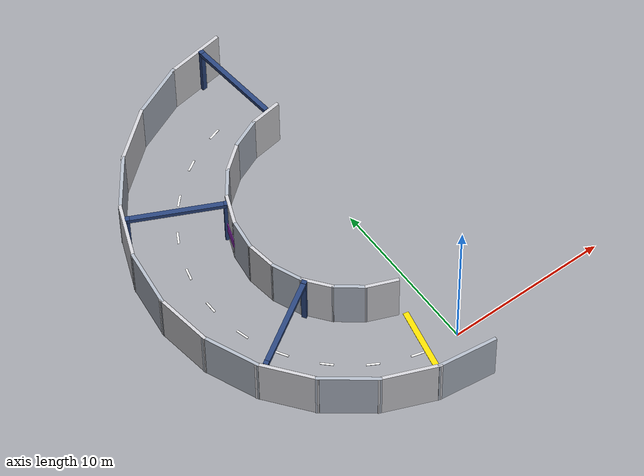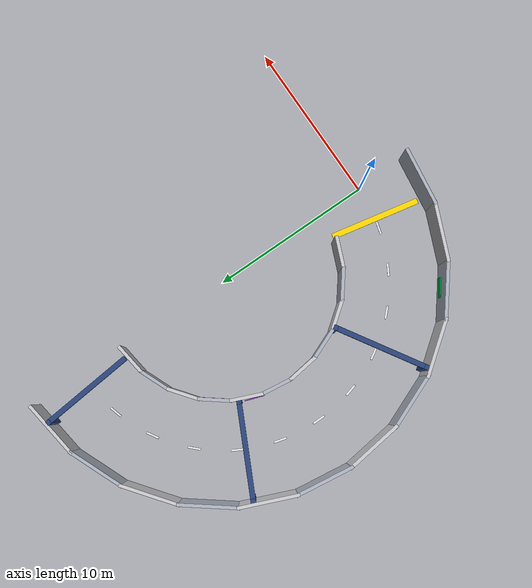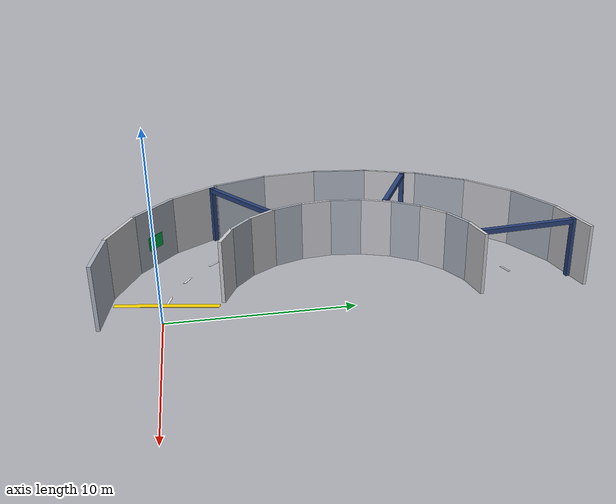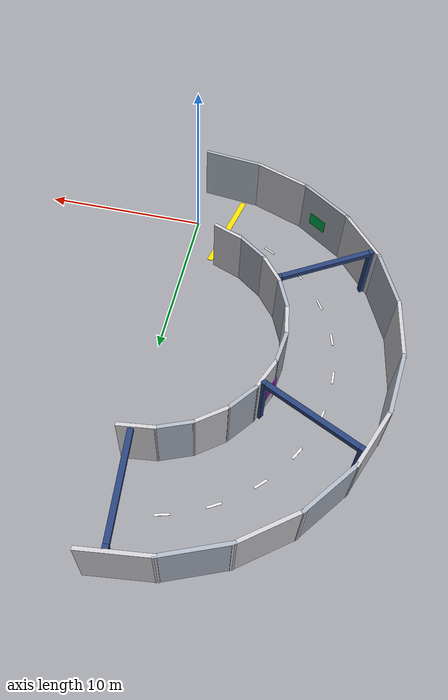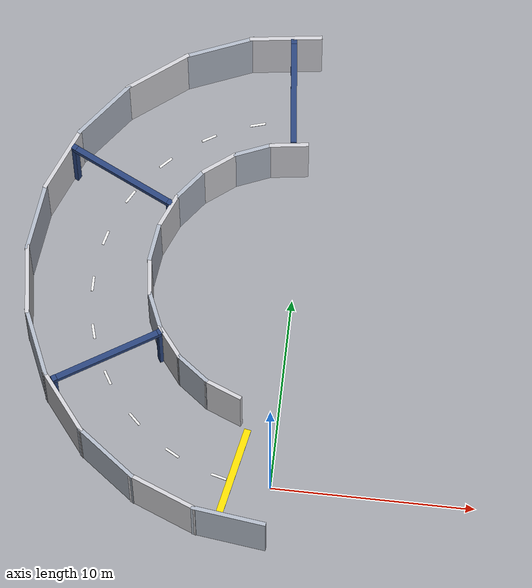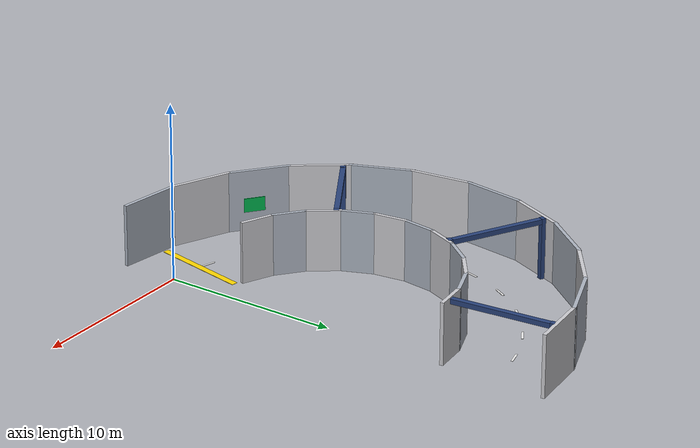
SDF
<sdf version="1.10">
 <world name="tunnel_circuit">
  <model name="tw_Lo_0">
   <static>true</static>
   <pose>-1.697 22.889 1.750 0 0 3.2725</pose>
   <link name="link">
    <collision name="col"><geometry><box><size>3.665 0.200 3.500</size></box></geometry></collision>
    <visual name="vis">
     <geometry><box><size>3.665 0.200 3.500</size></box></geometry>
     <material>
      <ambient>0.50 0.50 0.52 1</ambient>
      <diffuse>0.80 0.80 0.82 1</diffuse>
      <specular>0.1 0.1 0.1 1</specular>
      <pbr>
       <metal><albedo_map>detail.png</albedo_map><roughness>0.92</roughness><metalness>0.0</metalness></metal>
      </pbr>
     </material>
    </visual>
   </link>
  </model>
  <model name="tw_Lo_1">
   <static>true</static>
   <pose>-4.975 22.010 1.750 0 0 3.5343</pose>
   <link name="link">
    <collision name="col"><geometry><box><size>3.665 0.200 3.500</size></box></geometry></collision>
    <visual name="vis">
     <geometry><box><size>3.665 0.200 3.500</size></box></geometry>
     <material>
      <ambient>0.42 0.44 0.48 1</ambient>
      <diffuse>0.68 0.71 0.76 1</diffuse>
      <specular>0.1 0.1 0.1 1</specular>
      <pbr>
       <metal><albedo_map>detail.png</albedo_map><roughness>0.9</roughness><metalness>0.0</metalness></metal>
      </pbr>
     </material>
    </visual>
   </link>
  </model>
  <model name="tw_Lo_2">
   <static>true</static>
   <pose>-7.914 20.314 1.750 0 0 3.7961</pose>
   <link name="link">
    <collision name="col"><geometry><box><size>3.665 0.200 3.500</size></box></geometry></collision>
    <visual name="vis">
     <geometry><box><size>3.665 0.200 3.500</size></box></geometry>
     <material>
      <ambient>0.50 0.50 0.52 1</ambient>
      <diffuse>0.80 0.80 0.82 1</diffuse>
      <specular>0.1 0.1 0.1 1</specular>
      <pbr>
       <metal><albedo_map>detail.png</albedo_map><roughness>0.92</roughness><metalness>0.0</metalness></metal>
      </pbr>
     </material>
    </visual>
   </link>
  </model>
  <model name="tw_Lo_3">
   <static>true</static>
   <pose>-10.314 17.914 1.750 0 0 4.0579</pose>
   <link name="link">
    <collision name="col"><geometry><box><size>3.665 0.200 3.500</size></box></geometry></collision>
    <visual name="vis">
     <geometry><box><size>3.665 0.200 3.500</size></box></geometry>
     <material>
      <ambient>0.42 0.44 0.48 1</ambient>
      <diffuse>0.68 0.71 0.76 1</diffuse>
      <specular>0.1 0.1 0.1 1</specular>
      <pbr>
       <metal><albedo_map>detail.png</albedo_map><roughness>0.9</roughness><metalness>0.0</metalness></metal>
      </pbr>
     </material>
    </visual>
   </link>
  </model>
  <model name="tw_Lo_4">
   <static>true</static>
   <pose>-12.010 14.975 1.750 0 0 4.3197</pose>
   <link name="link">
    <collision name="col"><geometry><box><size>3.665 0.200 3.500</size></box></geometry></collision>
    <visual name="vis">
     <geometry><box><size>3.665 0.200 3.500</size></box></geometry>
     <material>
      <ambient>0.50 0.50 0.52 1</ambient>
      <diffuse>0.80 0.80 0.82 1</diffuse>
      <specular>0.1 0.1 0.1 1</specular>
      <pbr>
       <metal><albedo_map>detail.png</albedo_map><roughness>0.92</roughness><metalness>0.0</metalness></metal>
      </pbr>
     </material>
    </visual>
   </link>
  </model>
  <model name="tw_Lo_5">
   <static>true</static>
   <pose>-12.889 11.697 1.750 0 0 4.5815</pose>
   <link name="link">
    <collision name="col"><geometry><box><size>3.665 0.200 3.500</size></box></geometry></collision>
    <visual name="vis">
     <geometry><box><size>3.665 0.200 3.500</size></box></geometry>
     <material>
      <ambient>0.42 0.44 0.48 1</ambient>
      <diffuse>0.68 0.71 0.76 1</diffuse>
      <specular>0.1 0.1 0.1 1</specular>
      <pbr>
       <metal><albedo_map>detail.png</albedo_map><roughness>0.9</roughness><metalness>0.0</metalness></metal>
      </pbr>
     </material>
    </visual>
   </link>
  </model>
  <model name="tw_Lo_6">
   <static>true</static>
   <pose>-12.889 8.303 1.750 0 0 4.8433</pose>
   <link name="link">
    <collision name="col"><geometry><box><size>3.665 0.200 3.500</size></box></geometry></collision>
    <visual name="vis">
     <geometry><box><size>3.665 0.200 3.500</size></box></geometry>
     <material>
      <ambient>0.50 0.50 0.52 1</ambient>
      <diffuse>0.80 0.80 0.82 1</diffuse>
      <specular>0.1 0.1 0.1 1</specular>
      <pbr>
       <metal><albedo_map>detail.png</albedo_map><roughness>0.92</roughness><metalness>0.0</metalness></metal>
      </pbr>
     </material>
    </visual>
   </link>
  </model>
  <model name="tw_Lo_7">
   <static>true</static>
   <pose>-12.010 5.025 1.750 0 0 5.1051</pose>
   <link name="link">
    <collision name="col"><geometry><box><size>3.665 0.200 3.500</size></box></geometry></collision>
    <visual name="vis">
     <geometry><box><size>3.665 0.200 3.500</size></box></geometry>
     <material>
      <ambient>0.42 0.44 0.48 1</ambient>
      <diffuse>0.68 0.71 0.76 1</diffuse>
      <specular>0.1 0.1 0.1 1</specular>
      <pbr>
       <metal><albedo_map>detail.png</albedo_map><roughness>0.9</roughness><metalness>0.0</metalness></metal>
      </pbr>
     </material>
    </visual>
   </link>
  </model>
  <model name="tw_Lo_8">
   <static>true</static>
   <pose>-10.314 2.086 1.750 0 0 5.3669</pose>
   <link name="link">
    <collision name="col"><geometry><box><size>3.665 0.200 3.500</size></box></geometry></collision>
    <visual name="vis">
     <geometry><box><size>3.665 0.200 3.500</size></box></geometry>
     <material>
      <ambient>0.50 0.50 0.52 1</ambient>
      <diffuse>0.80 0.80 0.82 1</diffuse>
      <specular>0.1 0.1 0.1 1</specular>
      <pbr>
       <metal><albedo_map>detail.png</albedo_map><roughness>0.92</roughness><metalness>0.0</metalness></metal>
      </pbr>
     </material>
    </visual>
   </link>
  </model>
  <model name="tw_Lo_9">
   <static>true</static>
   <pose>-7.914 -0.314 1.750 0 0 5.6287</pose>
   <link name="link">
    <collision name="col"><geometry><box><size>3.665 0.200 3.500</size></box></geometry></collision>
    <visual name="vis">
     <geometry><box><size>3.665 0.200 3.500</size></box></geometry>
     <material>
      <ambient>0.42 0.44 0.48 1</ambient>
      <diffuse>0.68 0.71 0.76 1</diffuse>
      <specular>0.1 0.1 0.1 1</specular>
      <pbr>
       <metal><albedo_map>detail.png</albedo_map><roughness>0.9</roughness><metalness>0.0</metalness></metal>
      </pbr>
     </material>
    </visual>
   </link>
  </model>
  <model name="tw_Lo_10">
   <static>true</static>
   <pose>-4.975 -2.010 1.750 0 0 5.8905</pose>
   <link name="link">
    <collision name="col"><geometry><box><size>3.665 0.200 3.500</size></box></geometry></collision>
    <visual name="vis">
     <geometry><box><size>3.665 0.200 3.500</size></box></geometry>
     <material>
      <ambient>0.50 0.50 0.52 1</ambient>
      <diffuse>0.80 0.80 0.82 1</diffuse>
      <specular>0.1 0.1 0.1 1</specular>
      <pbr>
       <metal><albedo_map>detail.png</albedo_map><roughness>0.92</roughness><metalness>0.0</metalness></metal>
      </pbr>
     </material>
    </visual>
   </link>
  </model>
  <model name="tw_Lo_11">
   <static>true</static>
   <pose>-1.697 -2.889 1.750 0 0 6.1523</pose>
   <link name="link">
    <collision name="col"><geometry><box><size>3.665 0.200 3.500</size></box></geometry></collision>
    <visual name="vis">
     <geometry><box><size>3.665 0.200 3.500</size></box></geometry>
     <material>
      <ambient>0.42 0.44 0.48 1</ambient>
      <diffuse>0.68 0.71 0.76 1</diffuse>
      <specular>0.1 0.1 0.1 1</specular>
      <pbr>
       <metal><albedo_map>detail.png</albedo_map><roughness>0.9</roughness><metalness>0.0</metalness></metal>
      </pbr>
     </material>
    </visual>
   </link>
  </model>
  <model name="tw_Li_0">
   <static>true</static>
   <pose>-0.914 16.940 1.750 0 0 3.2725</pose>
   <link name="link">
    <collision name="col"><geometry><box><size>1.974 0.200 3.500</size></box></geometry></collision>
    <visual name="vis">
     <geometry><box><size>1.974 0.200 3.500</size></box></geometry>
     <material>
      <ambient>0.50 0.50 0.52 1</ambient>
      <diffuse>0.80 0.80 0.82 1</diffuse>
      <specular>0.1 0.1 0.1 1</specular>
      <pbr>
       <metal><albedo_map>detail.png</albedo_map><roughness>0.92</roughness><metalness>0.0</metalness></metal>
      </pbr>
     </material>
    </visual>
   </link>
  </model>
  <model name="tw_Li_1">
   <static>true</static>
   <pose>-2.679 16.467 1.750 0 0 3.5343</pose>
   <link name="link">
    <collision name="col"><geometry><box><size>1.974 0.200 3.500</size></box></geometry></collision>
    <visual name="vis">
     <geometry><box><size>1.974 0.200 3.500</size></box></geometry>
     <material>
      <ambient>0.42 0.44 0.48 1</ambient>
      <diffuse>0.68 0.71 0.76 1</diffuse>
      <specular>0.1 0.1 0.1 1</specular>
      <pbr>
       <metal><albedo_map>detail.png</albedo_map><roughness>0.9</roughness><metalness>0.0</metalness></metal>
      </pbr>
     </material>
    </visual>
   </link>
  </model>
  <model name="tw_Li_2">
   <static>true</static>
   <pose>-4.261 15.553 1.750 0 0 3.7961</pose>
   <link name="link">
    <collision name="col"><geometry><box><size>1.974 0.200 3.500</size></box></geometry></collision>
    <visual name="vis">
     <geometry><box><size>1.974 0.200 3.500</size></box></geometry>
     <material>
      <ambient>0.50 0.50 0.52 1</ambient>
      <diffuse>0.80 0.80 0.82 1</diffuse>
      <specular>0.1 0.1 0.1 1</specular>
      <pbr>
       <metal><albedo_map>detail.png</albedo_map><roughness>0.92</roughness><metalness>0.0</metalness></metal>
      </pbr>
     </material>
    </visual>
   </link>
  </model>
  <model name="tw_Li_3">
   <static>true</static>
   <pose>-5.553 14.261 1.750 0 0 4.0579</pose>
   <link name="link">
    <collision name="col"><geometry><box><size>1.974 0.200 3.500</size></box></geometry></collision>
    <visual name="vis">
     <geometry><box><size>1.974 0.200 3.500</size></box></geometry>
     <material>
      <ambient>0.42 0.44 0.48 1</ambient>
      <diffuse>0.68 0.71 0.76 1</diffuse>
      <specular>0.1 0.1 0.1 1</specular>
      <pbr>
       <metal><albedo_map>detail.png</albedo_map><roughness>0.9</roughness><metalness>0.0</metalness></metal>
      </pbr>
     </material>
    </visual>
   </link>
  </model>
  <model name="tw_Li_4">
   <static>true</static>
   <pose>-6.467 12.679 1.750 0 0 4.3197</pose>
   <link name="link">
    <collision name="col"><geometry><box><size>1.974 0.200 3.500</size></box></geometry></collision>
    <visual name="vis">
     <geometry><box><size>1.974 0.200 3.500</size></box></geometry>
     <material>
      <ambient>0.50 0.50 0.52 1</ambient>
      <diffuse>0.80 0.80 0.82 1</diffuse>
      <specular>0.1 0.1 0.1 1</specular>
      <pbr>
       <metal><albedo_map>detail.png</albedo_map><roughness>0.92</roughness><metalness>0.0</metalness></metal>
      </pbr>
     </material>
    </visual>
   </link>
  </model>
  <model name="tw_Li_5">
   <static>true</static>
   <pose>-6.940 10.914 1.750 0 0 4.5815</pose>
   <link name="link">
    <collision name="col"><geometry><box><size>1.974 0.200 3.500</size></box></geometry></collision>
    <visual name="vis">
     <geometry><box><size>1.974 0.200 3.500</size></box></geometry>
     <material>
      <ambient>0.42 0.44 0.48 1</ambient>
      <diffuse>0.68 0.71 0.76 1</diffuse>
      <specular>0.1 0.1 0.1 1</specular>
      <pbr>
       <metal><albedo_map>detail.png</albedo_map><roughness>0.9</roughness><metalness>0.0</metalness></metal>
      </pbr>
     </material>
    </visual>
   </link>
  </model>
  <model name="tw_Li_6">
   <static>true</static>
   <pose>-6.940 9.086 1.750 0 0 4.8433</pose>
   <link name="link">
    <collision name="col"><geometry><box><size>1.974 0.200 3.500</size></box></geometry></collision>
    <visual name="vis">
     <geometry><box><size>1.974 0.200 3.500</size></box></geometry>
     <material>
      <ambient>0.50 0.50 0.52 1</ambient>
      <diffuse>0.80 0.80 0.82 1</diffuse>
      <specular>0.1 0.1 0.1 1</specular>
      <pbr>
       <metal><albedo_map>detail.png</albedo_map><roughness>0.92</roughness><metalness>0.0</metalness></metal>
      </pbr>
     </material>
    </visual>
   </link>
  </model>
  <model name="tw_Li_7">
   <static>true</static>
   <pose>-6.467 7.321 1.750 0 0 5.1051</pose>
   <link name="link">
    <collision name="col"><geometry><box><size>1.974 0.200 3.500</size></box></geometry></collision>
    <visual name="vis">
     <geometry><box><size>1.974 0.200 3.500</size></box></geometry>
     <material>
      <ambient>0.42 0.44 0.48 1</ambient>
      <diffuse>0.68 0.71 0.76 1</diffuse>
      <specular>0.1 0.1 0.1 1</specular>
      <pbr>
       <metal><albedo_map>detail.png</albedo_map><roughness>0.9</roughness><metalness>0.0</metalness></metal>
      </pbr>
     </material>
    </visual>
   </link>
  </model>
  <model name="tw_Li_8">
   <static>true</static>
   <pose>-5.553 5.739 1.750 0 0 5.3669</pose>
   <link name="link">
    <collision name="col"><geometry><box><size>1.974 0.200 3.500</size></box></geometry></collision>
    <visual name="vis">
     <geometry><box><size>1.974 0.200 3.500</size></box></geometry>
     <material>
      <ambient>0.50 0.50 0.52 1</ambient>
      <diffuse>0.80 0.80 0.82 1</diffuse>
      <specular>0.1 0.1 0.1 1</specular>
      <pbr>
       <metal><albedo_map>detail.png</albedo_map><roughness>0.92</roughness><metalness>0.0</metalness></metal>
      </pbr>
     </material>
    </visual>
   </link>
  </model>
  <model name="tw_Li_9">
   <static>true</static>
   <pose>-4.261 4.447 1.750 0 0 5.6287</pose>
   <link name="link">
    <collision name="col"><geometry><box><size>1.974 0.200 3.500</size></box></geometry></collision>
    <visual name="vis">
     <geometry><box><size>1.974 0.200 3.500</size></box></geometry>
     <material>
      <ambient>0.42 0.44 0.48 1</ambient>
      <diffuse>0.68 0.71 0.76 1</diffuse>
      <specular>0.1 0.1 0.1 1</specular>
      <pbr>
       <metal><albedo_map>detail.png</albedo_map><roughness>0.9</roughness><metalness>0.0</metalness></metal>
      </pbr>
     </material>
    </visual>
   </link>
  </model>
  <model name="tw_Li_10">
   <static>true</static>
   <pose>-2.679 3.533 1.750 0 0 5.8905</pose>
   <link name="link">
    <collision name="col"><geometry><box><size>1.974 0.200 3.500</size></box></geometry></collision>
    <visual name="vis">
     <geometry><box><size>1.974 0.200 3.500</size></box></geometry>
     <material>
      <ambient>0.50 0.50 0.52 1</ambient>
      <diffuse>0.80 0.80 0.82 1</diffuse>
      <specular>0.1 0.1 0.1 1</specular>
      <pbr>
       <metal><albedo_map>detail.png</albedo_map><roughness>0.92</roughness><metalness>0.0</metalness></metal>
      </pbr>
     </material>
    </visual>
   </link>
  </model>
  <model name="rib17_m">
   <static>true</static>
   <pose>-1.269 22.757 1.750 0 0 3.2407</pose>
   <link name="link">
    <collision name="col"><geometry><box><size>0.300 0.250 3.500</size></box></geometry></collision>
    <visual name="vis">
     <geometry><box><size>0.300 0.250 3.500</size></box></geometry>
     <material>
      <ambient>0.10 0.16 0.30 1</ambient>
      <diffuse>0.16 0.26 0.48 1</diffuse>
      <specular>0.3 0.3 0.35 1</specular>
     </material>
    </visual>
   </link>
  </model>
  <model name="rib17_c">
   <static>true</static>
   <pose>-0.990 19.951 3.340 0 0 3.2407</pose>
   <link name="link">
    <collision name="col"><geometry><box><size>0.300 5.700 0.280</size></box></geometry></collision>
    <visual name="vis">
     <geometry><box><size>0.300 5.700 0.280</size></box></geometry>
     <material>
      <ambient>0.10 0.16 0.30 1</ambient>
      <diffuse>0.16 0.26 0.48 1</diffuse>
      <specular>0.3 0.3 0.35 1</specular>
     </material>
    </visual>
   </link>
  </model>
  <model name="rib18_p">
   <static>true</static>
   <pose>-6.442 13.172 1.750 0 0 4.2549</pose>
   <link name="link">
    <collision name="col"><geometry><box><size>0.300 0.250 3.500</size></box></geometry></collision>
    <visual name="vis">
     <geometry><box><size>0.300 0.250 3.500</size></box></geometry>
     <material>
      <ambient>0.10 0.16 0.30 1</ambient>
      <diffuse>0.16 0.26 0.48 1</diffuse>
      <specular>0.3 0.3 0.35 1</specular>
     </material>
    </visual>
   </link>
  </model>
  <model name="rib18_m">
   <static>true</static>
   <pose>-11.501 15.663 1.750 0 0 4.2549</pose>
   <link name="link">
    <collision name="col"><geometry><box><size>0.300 0.250 3.500</size></box></geometry></collision>
    <visual name="vis">
     <geometry><box><size>0.300 0.250 3.500</size></box></geometry>
     <material>
      <ambient>0.10 0.16 0.30 1</ambient>
      <diffuse>0.16 0.26 0.48 1</diffuse>
      <specular>0.3 0.3 0.35 1</specular>
     </material>
    </visual>
   </link>
  </model>
  <model name="rib18_c">
   <static>true</static>
   <pose>-8.971 14.417 3.340 0 0 4.2549</pose>
   <link name="link">
    <collision name="col"><geometry><box><size>0.300 5.700 0.280</size></box></geometry></collision>
    <visual name="vis">
     <geometry><box><size>0.300 5.700 0.280</size></box></geometry>
     <material>
      <ambient>0.10 0.16 0.30 1</ambient>
      <diffuse>0.16 0.26 0.48 1</diffuse>
      <specular>0.3 0.3 0.35 1</specular>
     </material>
    </visual>
   </link>
  </model>
  <model name="rib19_p">
   <static>true</static>
   <pose>-6.096 6.207 1.750 0 0 5.2690</pose>
   <link name="link">
    <collision name="col"><geometry><box><size>0.300 0.250 3.500</size></box></geometry></collision>
    <visual name="vis">
     <geometry><box><size>0.300 0.250 3.500</size></box></geometry>
     <material>
      <ambient>0.10 0.16 0.30 1</ambient>
      <diffuse>0.16 0.26 0.48 1</diffuse>
      <specular>0.3 0.3 0.35 1</specular>
     </material>
    </visual>
   </link>
  </model>
  <model name="rib19_m">
   <static>true</static>
   <pose>-10.885 3.227 1.750 0 0 5.2690</pose>
   <link name="link">
    <collision name="col"><geometry><box><size>0.300 0.250 3.500</size></box></geometry></collision>
    <visual name="vis">
     <geometry><box><size>0.300 0.250 3.500</size></box></geometry>
     <material>
      <ambient>0.10 0.16 0.30 1</ambient>
      <diffuse>0.16 0.26 0.48 1</diffuse>
      <specular>0.3 0.3 0.35 1</specular>
     </material>
    </visual>
   </link>
  </model>
  <model name="rib19_c">
   <static>true</static>
   <pose>-8.490 4.717 3.340 0 0 5.2690</pose>
   <link name="link">
    <collision name="col"><geometry><box><size>0.300 5.700 0.280</size></box></geometry></collision>
    <visual name="vis">
     <geometry><box><size>0.300 5.700 0.280</size></box></geometry>
     <material>
      <ambient>0.10 0.16 0.30 1</ambient>
      <diffuse>0.16 0.26 0.48 1</diffuse>
      <specular>0.3 0.3 0.35 1</specular>
     </material>
    </visual>
   </link>
  </model>
  <model name="sign14">
   <static>true</static>
   <pose>-6.772 12.325 1.500 0 0 4.3816</pose>
   <link name="link">
    <visual name="vis">
     <geometry><box><size>1.200 0.050 0.800</size></box></geometry>
     <material>
      <ambient>0.35 0.10 0.45 1</ambient>
      <diffuse>0.55 0.16 0.70 1</diffuse>
      <specular>0.1 0.1 0.1 1</specular>
     </material>
    </visual>
   </link>
  </model>
  <model name="sign15">
   <static>true</static>
   <pose>-7.605 -0.346 1.500 0 0 5.6493</pose>
   <link name="link">
    <visual name="vis">
     <geometry><box><size>1.200 0.050 0.800</size></box></geometry>
     <material>
      <ambient>0.0 0.5 0.2 1</ambient>
      <diffuse>0.0 0.7 0.3 1</diffuse>
      <specular>0.1 0.1 0.1 1</specular>
     </material>
    </visual>
   </link>
  </model>
  <model name="dash67">
   <static>true</static>
   <pose>-2.775 19.607 0.012 0 0 3.4227</pose>
   <link name="link">
    <visual name="vis">
     <geometry><box><size>0.800 0.120 0.020</size></box></geometry>
     <material>
      <ambient>0.7 0.7 0.7 1</ambient>
      <diffuse>0.92 0.92 0.92 1</diffuse>
      <specular>0.1 0.1 0.1 1</specular>
     </material>
    </visual>
   </link>
  </model>
  <model name="dash68">
   <static>true</static>
   <pose>-5.152 18.571 0.012 0 0 3.6828</pose>
   <link name="link">
    <visual name="vis">
     <geometry><box><size>0.800 0.120 0.020</size></box></geometry>
     <material>
      <ambient>0.7 0.7 0.7 1</ambient>
      <diffuse>0.92 0.92 0.92 1</diffuse>
      <specular>0.1 0.1 0.1 1</specular>
     </material>
    </visual>
   </link>
  </model>
  <model name="dash69">
   <static>true</static>
   <pose>-7.182 16.958 0.012 0 0 3.9428</pose>
   <link name="link">
    <visual name="vis">
     <geometry><box><size>0.800 0.120 0.020</size></box></geometry>
     <material>
      <ambient>0.7 0.7 0.7 1</ambient>
      <diffuse>0.92 0.92 0.92 1</diffuse>
      <specular>0.1 0.1 0.1 1</specular>
     </material>
    </visual>
   </link>
  </model>
  <model name="dash70">
   <static>true</static>
   <pose>-8.730 14.878 0.012 0 0 4.2029</pose>
   <link name="link">
    <visual name="vis">
     <geometry><box><size>0.800 0.120 0.020</size></box></geometry>
     <material>
      <ambient>0.7 0.7 0.7 1</ambient>
      <diffuse>0.92 0.92 0.92 1</diffuse>
      <specular>0.1 0.1 0.1 1</specular>
     </material>
    </visual>
   </link>
  </model>
  <model name="dash71">
   <static>true</static>
   <pose>-9.690 12.469 0.012 0 0 4.4629</pose>
   <link name="link">
    <visual name="vis">
     <geometry><box><size>0.800 0.120 0.020</size></box></geometry>
     <material>
      <ambient>0.7 0.7 0.7 1</ambient>
      <diffuse>0.92 0.92 0.92 1</diffuse>
      <specular>0.1 0.1 0.1 1</specular>
     </material>
    </visual>
   </link>
  </model>
  <model name="dash72">
   <static>true</static>
   <pose>-9.999 9.894 0.012 0 0 4.7229</pose>
   <link name="link">
    <visual name="vis">
     <geometry><box><size>0.800 0.120 0.020</size></box></geometry>
     <material>
      <ambient>0.7 0.7 0.7 1</ambient>
      <diffuse>0.92 0.92 0.92 1</diffuse>
      <specular>0.1 0.1 0.1 1</specular>
     </material>
    </visual>
   </link>
  </model>
  <model name="dash73">
   <static>true</static>
   <pose>-9.636 7.327 0.012 0 0 4.9830</pose>
   <link name="link">
    <visual name="vis">
     <geometry><box><size>0.800 0.120 0.020</size></box></geometry>
     <material>
      <ambient>0.7 0.7 0.7 1</ambient>
      <diffuse>0.92 0.92 0.92 1</diffuse>
      <specular>0.1 0.1 0.1 1</specular>
     </material>
    </visual>
   </link>
  </model>
  <model name="dash74">
   <static>true</static>
   <pose>-8.625 4.939 0.012 0 0 5.2430</pose>
   <link name="link">
    <visual name="vis">
     <geometry><box><size>0.800 0.120 0.020</size></box></geometry>
     <material>
      <ambient>0.7 0.7 0.7 1</ambient>
      <diffuse>0.92 0.92 0.92 1</diffuse>
      <specular>0.1 0.1 0.1 1</specular>
     </material>
    </visual>
   </link>
  </model>
  <model name="dash75">
   <static>true</static>
   <pose>-7.034 2.892 0.012 0 0 5.5031</pose>
   <link name="link">
    <visual name="vis">
     <geometry><box><size>0.800 0.120 0.020</size></box></geometry>
     <material>
      <ambient>0.7 0.7 0.7 1</ambient>
      <diffuse>0.92 0.92 0.92 1</diffuse>
      <specular>0.1 0.1 0.1 1</specular>
     </material>
    </visual>
   </link>
  </model>
  <model name="dash76">
   <static>true</static>
   <pose>-4.970 1.322 0.012 0 0 5.7631</pose>
   <link name="link">
    <visual name="vis">
     <geometry><box><size>0.800 0.120 0.020</size></box></geometry>
     <material>
      <ambient>0.7 0.7 0.7 1</ambient>
      <diffuse>0.92 0.92 0.92 1</diffuse>
      <specular>0.1 0.1 0.1 1</specular>
     </material>
    </visual>
   </link>
  </model>
  <model name="dash77">
   <static>true</static>
   <pose>-2.571 0.336 0.012 0 0 6.0231</pose>
   <link name="link">
    <visual name="vis">
     <geometry><box><size>0.800 0.120 0.020</size></box></geometry>
     <material>
      <ambient>0.7 0.7 0.7 1</ambient>
      <diffuse>0.92 0.92 0.92 1</diffuse>
      <specular>0.1 0.1 0.1 1</specular>
     </material>
    </visual>
   </link>
  </model>
  <model name="hazard3">
   <static>true</static>
   <pose>-1.987 0.199 0.013 0 0 6.0832</pose>
   <link name="link">
    <visual name="vis">
     <geometry><box><size>0.350 5.600 0.020</size></box></geometry>
     <material>
      <ambient>0.85 0.75 0.0 1</ambient>
      <diffuse>1.0 0.85 0.0 1</diffuse>
      <specular>0.1 0.1 0.1 1</specular>
     </material>
    </visual>
   </link>
  </model>
 </world>
</sdf>
